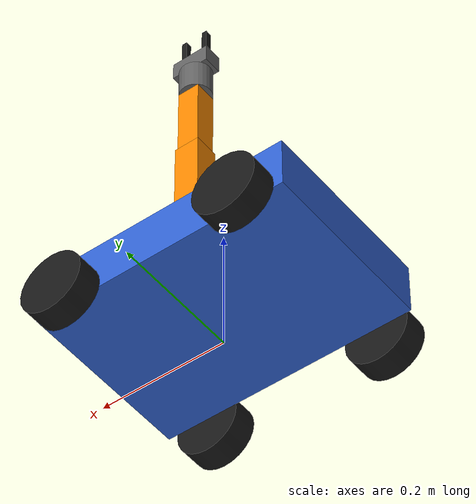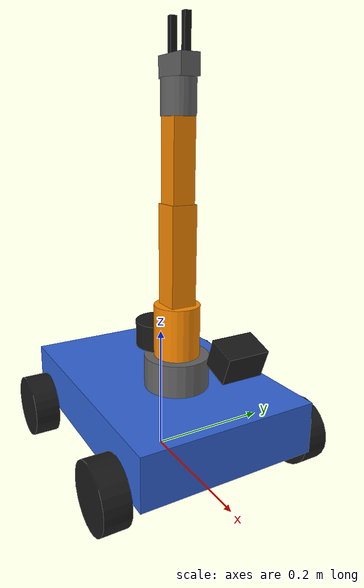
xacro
<?xml version="1.0"?>
<robot name="mobile_arm" xmlns:xacro="http://www.ros.org/wiki/xacro">

  <!-- Properties                                                     -->
  <xacro:property name="base_length"    value="0.40"/>
  <xacro:property name="base_width"     value="0.28"/>
  <xacro:property name="base_height"    value="0.08"/>
  <xacro:property name="base_mass"      value="5.0"/>

  <xacro:property name="wheel_radius"    value="0.05"/>
  <xacro:property name="wheel_thickness" value="0.04"/>
  <xacro:property name="wheel_mass"      value="0.3"/>
  <xacro:property name="wheel_xoff"      value="0.14"/>
  <xacro:property name="wheel_yoff"      value="${base_width/2 + wheel_thickness/2 + 0.005}"/>

  <!-- Materials                                                      -->
  <material name="grey">   <color rgba="0.4 0.4 0.4 1.0"/></material>
  <material name="black">  <color rgba="0.1 0.1 0.1 1.0"/></material>
  <material name="blue">   <color rgba="0.2 0.4 0.85 1.0"/></material>
  <material name="orange"> <color rgba="1.0 0.55 0.0 1.0"/></material>

  <!-- Inertia macros                                                 -->
  <xacro:macro name="box_inertia" params="m x y z">
    <inertial>
      <mass value="${m}"/>
      <inertia ixx="${m*(y*y+z*z)/12}" ixy="0" ixz="0"
               iyy="${m*(x*x+z*z)/12}" iyz="0"
               izz="${m*(x*x+y*y)/12}"/>
    </inertial>
  </xacro:macro>

  <xacro:macro name="cylinder_inertia" params="m r h">
    <inertial>
      <mass value="${m}"/>
      <inertia ixx="${m*(3*r*r+h*h)/12}" ixy="0" ixz="0"
               iyy="${m*(3*r*r+h*h)/12}" iyz="0"
               izz="${m*r*r/2}"/>
    </inertial>
  </xacro:macro>

  <!-- base_footprint -> base_link                                    -->
  <link name="base_footprint"/>

  <joint name="base_footprint_joint" type="fixed">
    <parent link="base_footprint"/>
    <child  link="base_link"/>
    <origin xyz="0 0 ${wheel_radius}" rpy="0 0 0"/>
  </joint>

  <link name="base_link">
    <visual>
      <origin xyz="0 0 ${base_height/2}" rpy="0 0 0"/>
      <geometry><box size="${base_length} ${base_width} ${base_height}"/></geometry>
      <material name="blue"/>
    </visual>
    <collision>
      <origin xyz="0 0 ${base_height/2}" rpy="0 0 0"/>
      <geometry><box size="${base_length} ${base_width} ${base_height}"/></geometry>
    </collision>
    <xacro:box_inertia m="${base_mass}" x="${base_length}" y="${base_width}" z="${base_height}"/>
  </link>

  <gazebo reference="base_link">
    <material>Gazebo/Blue</material>
  </gazebo>

  <!-- Wheels: FIXED joints, frictionless collision. planar_move slides -->
  <!-- the base rather than spinning wheels, so any wheel friction acts -->
  <!-- as a brake between plugin velocity updates (measured: the robot  -->
  <!-- reached ~10-35% of commanded speed with default mu). Collision   -->
  <!-- stays: it carries the chassis at ride height.                    -->
  <xacro:macro name="mecanum_wheel" params="prefix x y">
    <link name="${prefix}_wheel">
      <visual>
        <origin xyz="0 0 0" rpy="${pi/2} 0 0"/>
        <geometry><cylinder length="${wheel_thickness}" radius="${wheel_radius}"/></geometry>
        <material name="black"/>
      </visual>
      <collision>
        <origin xyz="0 0 0" rpy="${pi/2} 0 0"/>
        <geometry><cylinder length="${wheel_thickness}" radius="${wheel_radius}"/></geometry>
      </collision>
      <xacro:cylinder_inertia m="${wheel_mass}" r="${wheel_radius}" h="${wheel_thickness}"/>
    </link>

    <joint name="${prefix}_wheel_joint" type="fixed">
      <parent link="base_link"/>
      <child  link="${prefix}_wheel"/>
      <origin xyz="${x} ${y} 0" rpy="0 0 0"/>
    </joint>

    <gazebo reference="${prefix}_wheel">
      <material>Gazebo/FlatBlack</material>
      <mu1>0.0</mu1>
      <mu2>0.0</mu2>
    </gazebo>
  </xacro:macro>

  <xacro:mecanum_wheel prefix="front_left"  x=" ${wheel_xoff}" y=" ${wheel_yoff}"/>
  <xacro:mecanum_wheel prefix="front_right" x=" ${wheel_xoff}" y="-${wheel_yoff}"/>
  <xacro:mecanum_wheel prefix="rear_left"   x="-${wheel_xoff}" y=" ${wheel_yoff}"/>
  <xacro:mecanum_wheel prefix="rear_right"  x="-${wheel_xoff}" y="-${wheel_yoff}"/>

  <!-- Arm                                                             -->
  <link name="arm_base">
    <visual>
      <origin xyz="0 0 0.025" rpy="0 0 0"/>
      <geometry><cylinder length="0.05" radius="0.05"/></geometry>
      <material name="grey"/>
    </visual>
    <collision>
      <origin xyz="0 0 0.025" rpy="0 0 0"/>
      <geometry><cylinder length="0.05" radius="0.05"/></geometry>
    </collision>
    <xacro:cylinder_inertia m="0.3" r="0.05" h="0.05"/>
  </link>
  <joint name="arm_base_joint" type="fixed">
    <parent link="base_link"/>
    <child  link="arm_base"/>
    <origin xyz="0.05 0 ${base_height}" rpy="0 0 0"/>
  </joint>

  <link name="shoulder_link">
    <visual>
      <origin xyz="0 0 0.04" rpy="0 0 0"/>
      <geometry><cylinder length="0.08" radius="0.035"/></geometry>
      <material name="orange"/>
    </visual>
    <collision>
      <origin xyz="0 0 0.04" rpy="0 0 0"/>
      <geometry><cylinder length="0.08" radius="0.035"/></geometry>
    </collision>
    <xacro:cylinder_inertia m="0.2" r="0.035" h="0.08"/>
  </link>
  <joint name="shoulder_pan_joint" type="revolute">
    <parent link="arm_base"/>
    <child  link="shoulder_link"/>
    <origin xyz="0 0 0.05" rpy="0 0 0"/>
    <axis xyz="0 0 1"/>
    <limit lower="-3.14" upper="3.14" effort="20" velocity="2"/>
    <dynamics damping="0.5" friction="0.1"/>
  </joint>

  <link name="upper_arm_link">
    <visual>
      <origin xyz="0 0 0.075" rpy="0 0 0"/>
      <geometry><box size="0.04 0.04 0.15"/></geometry>
      <material name="orange"/>
    </visual>
    <collision>
      <origin xyz="0 0 0.075" rpy="0 0 0"/>
      <geometry><box size="0.04 0.04 0.15"/></geometry>
    </collision>
    <xacro:box_inertia m="0.2" x="0.04" y="0.04" z="0.15"/>
  </link>
  <joint name="shoulder_lift_joint" type="revolute">
    <parent link="shoulder_link"/>
    <child  link="upper_arm_link"/>
    <origin xyz="0 0 0.08" rpy="0 0 0"/>
    <axis xyz="0 1 0"/>
    <limit lower="-1.57" upper="1.57" effort="20" velocity="2"/>
    <dynamics damping="0.5" friction="0.1"/>
  </joint>

  <link name="forearm_link">
    <visual>
      <origin xyz="0 0 0.06" rpy="0 0 0"/>
      <geometry><box size="0.035 0.035 0.12"/></geometry>
      <material name="orange"/>
    </visual>
    <collision>
      <origin xyz="0 0 0.06" rpy="0 0 0"/>
      <geometry><box size="0.035 0.035 0.12"/></geometry>
    </collision>
    <xacro:box_inertia m="0.15" x="0.035" y="0.035" z="0.12"/>
  </link>
  <joint name="elbow_joint" type="revolute">
    <parent link="upper_arm_link"/>
    <child  link="forearm_link"/>
    <origin xyz="0 0 0.15" rpy="0 0 0"/>
    <axis xyz="0 1 0"/>
    <limit lower="-2.5" upper="2.5" effort="20" velocity="2"/>
    <dynamics damping="0.5" friction="0.1"/>
  </joint>

  <link name="wrist_link">
    <visual>
      <origin xyz="0 0 0.025" rpy="0 0 0"/>
      <geometry><cylinder length="0.05" radius="0.025"/></geometry>
      <material name="grey"/>
    </visual>
    <collision>
      <origin xyz="0 0 0.025" rpy="0 0 0"/>
      <geometry><cylinder length="0.05" radius="0.025"/></geometry>
    </collision>
    <xacro:cylinder_inertia m="0.1" r="0.025" h="0.05"/>
  </link>
  <joint name="wrist_joint" type="revolute">
    <parent link="forearm_link"/>
    <child  link="wrist_link"/>
    <origin xyz="0 0 0.12" rpy="0 0 0"/>
    <axis xyz="0 1 0"/>
    <limit lower="-1.57" upper="1.57" effort="20" velocity="2"/>
    <dynamics damping="0.5" friction="0.1"/>
  </joint>

  <!-- Gripper                                                        -->
  <link name="gripper_base">
    <visual>
      <origin xyz="0 0 0.015" rpy="0 0 0"/>
      <geometry><box size="0.06 0.03 0.03"/></geometry>
      <material name="grey"/>
    </visual>
    <collision>
      <origin xyz="0 0 0.015" rpy="0 0 0"/>
      <geometry><box size="0.06 0.03 0.03"/></geometry>
    </collision>
    <xacro:box_inertia m="0.05" x="0.06" y="0.03" z="0.03"/>
  </link>
  <joint name="gripper_base_joint" type="fixed">
    <parent link="wrist_link"/>
    <child  link="gripper_base"/>
    <origin xyz="0 0 0.05" rpy="0 0 0"/>
  </joint>

  <xacro:macro name="finger" params="prefix sign">
    <link name="${prefix}_finger">
      <visual>
        <origin xyz="0 0 0.025" rpy="0 0 0"/>
        <geometry><box size="0.008 0.01 0.05"/></geometry>
        <material name="black"/>
      </visual>
      <collision>
        <origin xyz="0 0 0.025" rpy="0 0 0"/>
        <geometry><box size="0.008 0.01 0.05"/></geometry>
      </collision>
      <xacro:box_inertia m="0.02" x="0.008" y="0.01" z="0.05"/>
    </link>
    <joint name="${prefix}_finger_joint" type="prismatic">
      <parent link="gripper_base"/>
      <child  link="${prefix}_finger"/>
      <origin xyz="${sign*0.018} 0 0.03" rpy="0 0 0"/>
      <axis xyz="1 0 0"/>
      <limit lower="-0.015" upper="0.005" effort="5" velocity="0.1"/>
      <dynamics damping="1.0" friction="0.1"/>
    </joint>
  </xacro:macro>

  <xacro:finger prefix="left"  sign="-1"/>
  <xacro:finger prefix="right" sign="1"/>

  <!-- Camera: forward-facing, 20° down tilt, on top of front bumper  -->
  <link name="camera_link">
    <visual>
      <origin xyz="0 0 0" rpy="0 0 0"/>
      <geometry><box size="0.04 0.06 0.04"/></geometry>
      <material name="black"/>
    </visual>
    <collision>
      <origin xyz="0 0 0" rpy="0 0 0"/>
      <geometry><box size="0.04 0.06 0.04"/></geometry>
    </collision>
    <xacro:box_inertia m="0.05" x="0.04" y="0.06" z="0.04"/>
  </link>
  <joint name="camera_joint" type="fixed">
    <parent link="base_link"/>
    <child  link="camera_link"/>
    <origin xyz="0.20 0 0.18" rpy="0 0.349 0"/>
  </joint>

  <link name="camera_link_optical"/>
  <joint name="camera_optical_joint" type="fixed">
    <parent link="camera_link"/>
    <child  link="camera_link_optical"/>
    <origin xyz="0 0 0" rpy="${-pi/2} 0 ${-pi/2}"/>
  </joint>

  <gazebo reference="camera_link">
    <material>Gazebo/FlatBlack</material>
    <sensor type="camera" name="camera_sensor">
      <update_rate>30.0</update_rate>
      <camera>
        <horizontal_fov>1.2</horizontal_fov>
        <image><width>640</width><height>480</height><format>R8G8B8</format></image>
        <clip><near>0.02</near><far>10</far></clip>
      </camera>
      <plugin name="camera_plugin" filename="libgazebo_ros_camera.so">
        <ros><namespace>/</namespace></ros>
        <camera_name>camera</camera_name>
        <frame_name>camera_link_optical</frame_name>
      </plugin>
    </sensor>
  </gazebo>

  <!-- LIDAR: 360° single-plane on top of chassis                     -->
  <link name="lidar_link">
    <visual>
      <origin xyz="0 0 0.02" rpy="0 0 0"/>
      <geometry><cylinder length="0.04" radius="0.04"/></geometry>
      <material name="black"/>
    </visual>
    <collision>
      <origin xyz="0 0 0.02" rpy="0 0 0"/>
      <geometry><cylinder length="0.04" radius="0.04"/></geometry>
    </collision>
    <xacro:cylinder_inertia m="0.1" r="0.04" h="0.04"/>
  </link>
  <joint name="lidar_joint" type="fixed">
    <parent link="base_link"/>
    <child  link="lidar_link"/>
    <origin xyz="0 0 0.13" rpy="0 0 0"/>
  </joint>

  <gazebo reference="lidar_link">
    <material>Gazebo/FlatBlack</material>
    <sensor type="ray" name="lidar_sensor">
      <pose>0 0 0.02 0 0 0</pose>
      <update_rate>10</update_rate>
      <ray>
        <scan>
          <horizontal>
            <samples>360</samples>
            <resolution>1</resolution>
            <min_angle>-3.14159</min_angle>
            <max_angle>3.14159</max_angle>
          </horizontal>
        </scan>
        <range>
          <min>0.10</min>
          <max>10.0</max>
          <resolution>0.01</resolution>
        </range>
      </ray>
      <plugin name="lidar_plugin" filename="libgazebo_ros_ray_sensor.so">
        <ros>
          <namespace>/</namespace>
          <remapping>~/out:=scan</remapping>
        </ros>
        <output_type>sensor_msgs/LaserScan</output_type>
        <frame_name>lidar_link</frame_name>
      </plugin>
    </sensor>
  </gazebo>

  <!-- ros2_control: arm + gripper joints, position-commanded         -->
  <ros2_control name="GazeboSystem" type="system">
    <hardware>
      <plugin>gazebo_ros2_control/GazeboSystem</plugin>
    </hardware>

    <joint name="shoulder_pan_joint">
      <command_interface name="position"><param name="min">-3.14</param><param name="max">3.14</param></command_interface>
      <state_interface name="position"><param name="initial_value">0.0</param></state_interface>
      <state_interface name="velocity"/>
    </joint>

    <joint name="shoulder_lift_joint">
      <command_interface name="position"><param name="min">-1.57</param><param name="max">1.57</param></command_interface>
      <state_interface name="position"><param name="initial_value">-0.5</param></state_interface>
      <state_interface name="velocity"/>
    </joint>

    <joint name="elbow_joint">
      <command_interface name="position"><param name="min">-2.5</param><param name="max">2.5</param></command_interface>
      <state_interface name="position"><param name="initial_value">1.2</param></state_interface>
      <state_interface name="velocity"/>
    </joint>

    <joint name="wrist_joint">
      <command_interface name="position"><param name="min">-1.57</param><param name="max">1.57</param></command_interface>
      <state_interface name="position"><param name="initial_value">0.3</param></state_interface>
      <state_interface name="velocity"/>
    </joint>

    <joint name="left_finger_joint">
      <command_interface name="position"><param name="min">-0.015</param><param name="max">0.005</param></command_interface>
      <state_interface name="position"><param name="initial_value">-0.01</param></state_interface>
      <state_interface name="velocity"/>
    </joint>

    <joint name="right_finger_joint">
      <command_interface name="position"><param name="min">-0.015</param><param name="max">0.005</param></command_interface>
      <state_interface name="position"><param name="initial_value">-0.01</param></state_interface>
      <state_interface name="velocity"/>
    </joint>
  </ros2_control>

  <!-- Gazebo plugins                                                 -->

  <!-- ros2_control plugin: gives us controller_manager + spawnable controllers -->
  <gazebo>
    <plugin filename="libgazebo_ros2_control.so" name="gazebo_ros2_control">
      <parameters>$(find mobile_arm_sim)/config/controllers.yaml</parameters>
    </plugin>
  </gazebo>

  <gazebo>
    <plugin name="gazebo_ros_planar_move" filename="libgazebo_ros_planar_move.so">
      <ros>
        <namespace>/</namespace>
      </ros>
      <update_rate>50</update_rate>
      <publish_rate>10</publish_rate>
      <publish_odom>true</publish_odom>
      <publish_odom_tf>true</publish_odom_tf>
      <odometry_frame>odom</odometry_frame>
      <robot_base_frame>base_footprint</robot_base_frame>
      <covariance_x>0.01</covariance_x>
      <covariance_y>0.01</covariance_y>
      <covariance_yaw>0.02</covariance_yaw>
    </plugin>
  </gazebo>

</robot>
